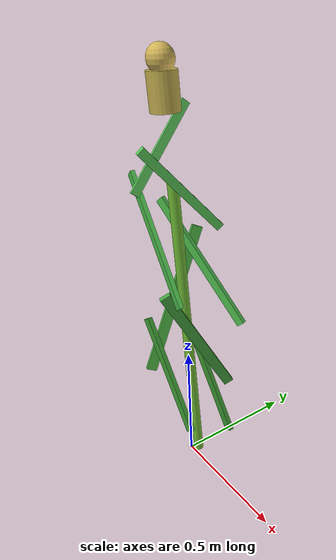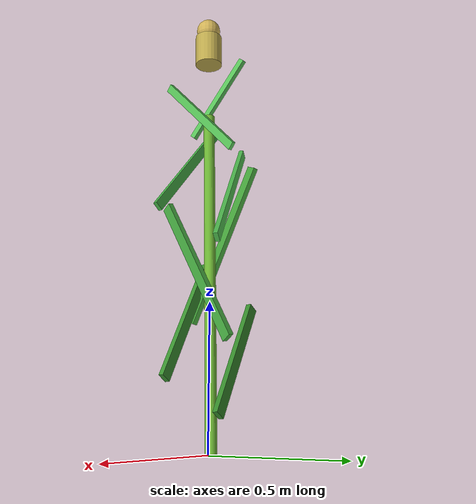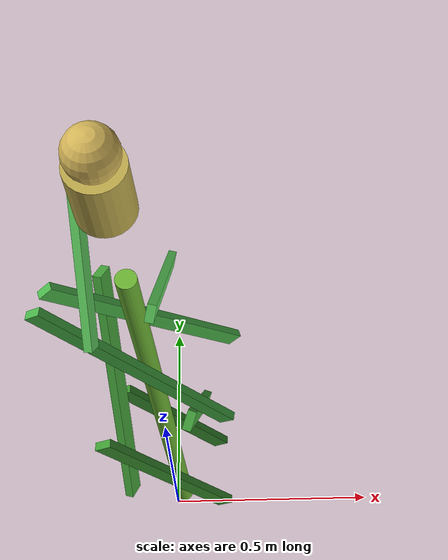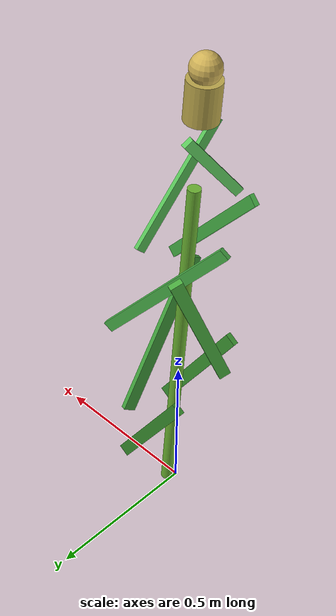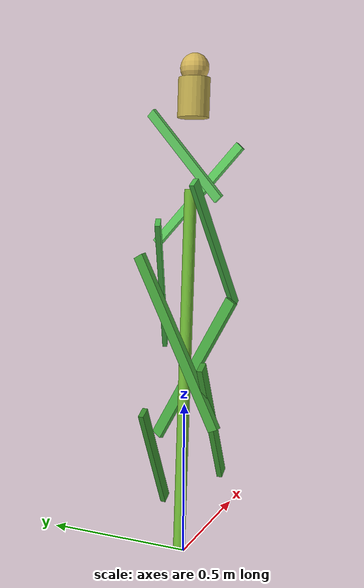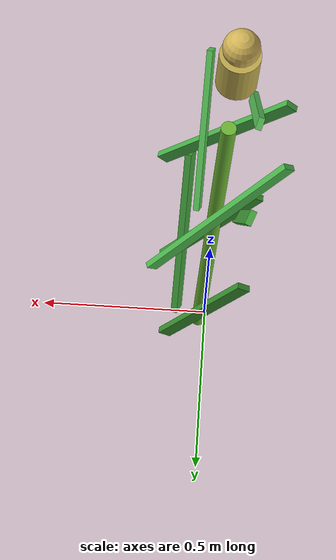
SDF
<?xml version="1.0"?>
<sdf version="1.7">

<model name="crop_row">
  <pose>0 0 0 0 0 0</pose>

  <static>true</static>

  <link name="plant">

    <!-- Slight lean -->
    <pose>0 0 0.60 0.04 -0.03 0</pose>

    <inertial>
      <mass>0.30</mass>
      <inertia>
        <ixx>0.001</ixx>
        <iyy>0.001</iyy>
        <izz>0.001</izz>
      </inertia>
    </inertial>

    <!-- Simple collision -->
    <collision name="collision">
      <geometry>
        <cylinder>
          <radius>0.10</radius>
          <length>1.20</length>
        </cylinder>
      </geometry>
    </collision>

    <!-- Main stalk -->

    <visual name="stalk">

      <geometry>
        <cylinder>
          <radius>0.020</radius>
          <length>1.20</length>
        </cylinder>
      </geometry>

      <material>
        <ambient>0.32 0.58 0.18 1</ambient>
        <diffuse>0.42 0.70 0.20 1</diffuse>
      </material>

    </visual>

    <!-- Leaves -->

    <visual name="leaf1">
      <pose>0 0.10 -0.30 0 1.05 0</pose>
      <geometry>
        <box>
          <size>0.42 0.018 0.040</size>
        </box>
      </geometry>
      <material>
        <ambient>0.18 0.42 0.15 1</ambient>
        <diffuse>0.22 0.56 0.18 1</diffuse>
      </material>
    </visual>

    <visual name="leaf2">
      <pose>0 -0.10 -0.15 0 -1.05 3.14</pose>
      <geometry>
        <box>
          <size>0.48 0.018 0.040</size>
        </box>
      </geometry>
      <material>
        <ambient>0.18 0.45 0.16 1</ambient>
        <diffuse>0.24 0.60 0.20 1</diffuse>
      </material>
    </visual>

    <visual name="leaf3">
      <pose>0.08 0 0.00 0.35 1.10 1.57</pose>
      <geometry>
        <box>
          <size>0.55 0.018 0.040</size>
        </box>
      </geometry>
      <material>
        <ambient>0.18 0.48 0.18 1</ambient>
        <diffuse>0.26 0.64 0.24 1</diffuse>
      </material>
    </visual>

    <visual name="leaf4">
      <pose>-0.08 0 0.12 -0.35 -1.10 1.57</pose>
      <geometry>
        <box>
          <size>0.60 0.018 0.040</size>
        </box>
      </geometry>
      <material>
        <ambient>0.20 0.50 0.18 1</ambient>
        <diffuse>0.28 0.66 0.24 1</diffuse>
      </material>
    </visual>

    <visual name="leaf5">
      <pose>0 0.09 0.28 0 0.90 0.3</pose>
      <geometry>
        <box>
          <size>0.55 0.016 0.035</size>
        </box>
      </geometry>
      <material>
        <ambient>0.22 0.54 0.22 1</ambient>
        <diffuse>0.30 0.72 0.30 1</diffuse>
      </material>
    </visual>

    <visual name="leaf6">
      <pose>0 -0.09 0.42 0 -0.90 3.0</pose>
      <geometry>
        <box>
          <size>0.50 0.016 0.035</size>
        </box>
      </geometry>
      <material>
        <ambient>0.20 0.52 0.20 1</ambient>
        <diffuse>0.28 0.70 0.28 1</diffuse>
      </material>
    </visual>

    <visual name="leaf7">
      <pose>0.06 0 0.58 0.25 0.85 1.57</pose>
      <geometry>
        <box>
          <size>0.42 0.015 0.030</size>
        </box>
      </geometry>
      <material>
        <ambient>0.24 0.60 0.22 1</ambient>
        <diffuse>0.34 0.76 0.34 1</diffuse>
      </material>
    </visual>

    <visual name="leaf8">
      <pose>-0.06 0 0.70 -0.25 -0.85 1.57</pose>
      <geometry>
        <box>
          <size>0.35 0.015 0.030</size>
        </box>
      </geometry>
      <material>
        <ambient>0.24 0.60 0.24 1</ambient>
        <diffuse>0.36 0.78 0.36 1</diffuse>
      </material>
    </visual>

    <!-- Seed Head -->

    <visual name="panicle_bottom">

      <pose>0 0 0.88 0 0 0</pose>

      <geometry>
        <cylinder>
          <radius>0.050</radius>
          <length>0.12</length>
        </cylinder>
      </geometry>

      <material>
        <ambient>0.62 0.55 0.24 1</ambient>
        <diffuse>0.74 0.66 0.30 1</diffuse>
      </material>

    </visual>

    <visual name="panicle_top">

      <pose>0 0 0.97 0 0 0</pose>

      <geometry>
        <sphere>
          <radius>0.045</radius>
        </sphere>
      </geometry>

      <material>
        <ambient>0.70 0.60 0.30 1</ambient>
        <diffuse>0.82 0.70 0.34 1</diffuse>
      </material>

    </visual>

  </link>

</model>

</sdf>
